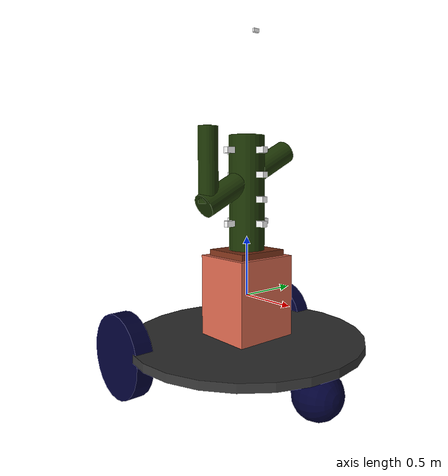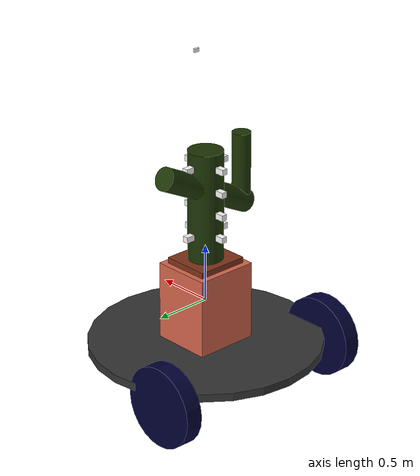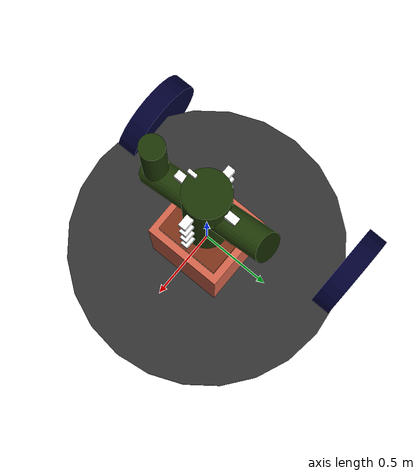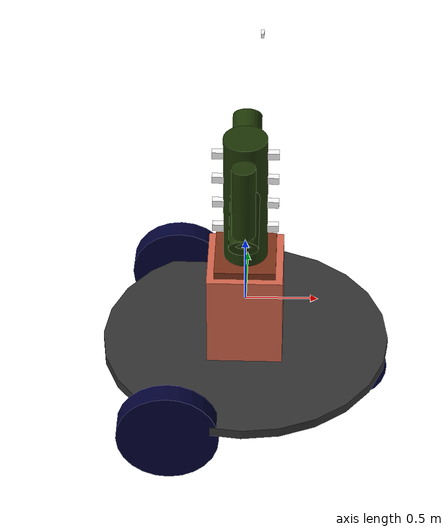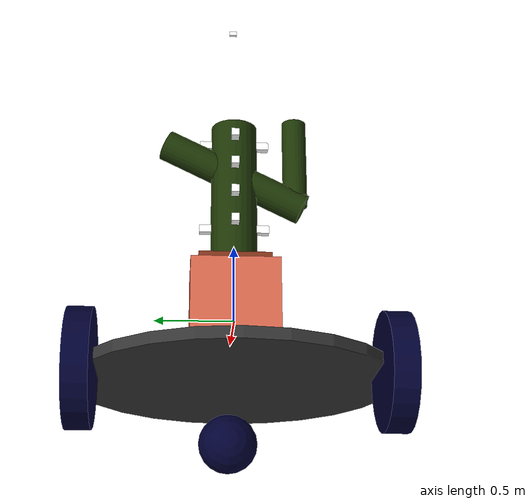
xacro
<?xml version="1.0"?>
<robot name="kak" xmlns:xacro="http://ros.org/wiki/xacro">

  <xacro:include filename="gazebo.urdf.xacro" />
  <xacro:include filename="imu.urdf.xacro" />

  <material name="Gray">
    <color rgba="0.2 0.2 0.2 1.0"/>
  </material>

  <material name="Pink">
    <color rgba="0.84 0.4 0.3 0.9"/>
  </material>

  <material name="Brown">
    <color rgba="0.5 0.2 0.1 1.0"/>
  </material>

  <material name="Green">
    <color rgba="0.112 0.21 0.021 1.0"/>
  </material>

  <material name="White">
    <color rgba="1 1 1 1.0"/>
  </material>

  <material name="Blue">
    <color rgba="0 0 0.2 1.0"/>
  </material>

   <!-- Define intertial property macros  -->
  <xacro:macro name="box_inertia" params="m w h d">
    <inertial>
      <origin xyz="0 0 0" rpy="${pi/2} 0 ${pi/2}"/>
      <mass value="${m}"/>
      <inertia ixx="${(m/12) * (h*h + d*d)}" ixy="0.0" ixz="0.0" iyy="${(m/12) * (w*w + d*d)}" iyz="0.0" izz="${(m/12) * (w*w + h*h)}"/>
    </inertial>
  </xacro:macro>

  <xacro:macro name="cylinder_inertia" params="m r h">
    <inertial>
      <origin xyz="0 0 0" rpy="${pi/2} 0 0" />
      <mass value="${m}"/>
      <inertia ixx="${(m/12) * (3*r*r + h*h)}" ixy = "0" ixz = "0" iyy="${(m/12) * (3*r*r + h*h)}" iyz = "0" izz="${(m/2) * (r*r)}"/>
    </inertial>
  </xacro:macro>

  <xacro:macro name="sphere_inertia" params="m r">
    <inertial>
      <mass value="${m}"/>
      <inertia ixx="${(2/5) * m * (r*r)}" ixy="0.0" ixz="0.0" iyy="${(2/5) * m * (r*r)}" iyz="0.0" izz="${(2/5) * m * (r*r)}"/>
    </inertial>
  </xacro:macro>

  <!--Base link-->
  <link name="base_link">
  </link>

  <!-- Robot Footprint -->
  <link name="base_footprint"/>

  <joint name="base_joint" type="fixed">
    <parent link="base_link"/>
    <child link="base_footprint"/>
    <origin xyz="0.0 0.0 -0.3" rpy="0 0 0"/>
  </joint>

   <link name="stol">
    <visual>
      <origin xyz="0 0 -0.38" rpy="0 0 0"/>
      <geometry>
	  <cylinder radius="1.0" length="0.07"/>
      </geometry>
      <material name="Gray"/>
    </visual>

    <collision>
      <geometry>
        <cylinder radius="1.0" length="0.07"/>
      </geometry>
    </collision>

    <xacro:cylinder_inertia m="0.7" r="1.0" h="0.07"/>
  </link>

  <joint name="stol_joint" type="fixed">
    <parent link="base_link"/>
    <child link="stol"/>
    <origin xyz="0.0 0.0 0.0" rpy="0 0 0"/>
  </joint>

  <!-- * * * Link Definitions * * * -->
  <link name="vaza">
    <visual>
      <geometry>
	<box size="0.52 0.56 0.685"/>
      </geometry>
      <material name="Pink"/>
    </visual>

    <collision>
      <geometry>
        <box size="0.52 0.56 0.685"/>
      </geometry>
    </collision>

    <xacro:box_inertia m="0.5" w="0.52" d="0.56" h="0.685"/>
  </link>

  <joint name="vaza_joint" type="fixed">
    <parent link="stol"/>
    <child link="vaza"/>
    <origin xyz="0 0 0" rpy="0 0 0"/>
  </joint>

  <link name="zemlya">
    <visual>
      <geometry>
	<box size="0.42 0.46 0.585"/>
      </geometry>
      <material name="Brown"/>
    </visual>

    <collision>
      <geometry>
        <box size="0.42 0.46 0.585"/>
      </geometry>
    </collision>

    <xacro:box_inertia m="0.5" w="0.42" d="0.46" h="0.585"/>
  </link>

  <joint name="zemlya_joint" type="fixed">
    <parent link="stol"/>
    <child link="zemlya"/>
    <origin xyz="0 0 0.1" rpy="0 0 0"/>
  </joint>

  <link name="kaktys">
    <visual>
      <geometry>
	<cylinder radius="0.15" length="1.7"/>
      </geometry>
      <material name="Green"/>
    </visual>

    <collision>
      <geometry>
        <cylinder radius="0.15" length="1.7"/>
      </geometry>
    </collision>

    <xacro:cylinder_inertia m="1" r="0.15" h="1.7"/>
  </link>

  <joint name="kaktys_joint" type="fixed">
    <parent link="stol"/>
    <child link="kaktys"/>
    <origin xyz="0 0 0.5" rpy="0 0 0"/>
  </joint>

  <link name="vetka_1">
    <visual>
      <geometry>
	<cylinder radius="0.1" length="1.0"/>
      </geometry>
      <material name="Green"/>
    </visual>

    <collision>
      <geometry>
        <cylinder radius="0.1" length="1.0"/>
      </geometry>
    </collision>

    <xacro:cylinder_inertia m="0.1" r="0.1" h="1.0"/>
  </link>

  <joint name="vetka_1_joint" type="fixed">
    <parent link="kaktys"/>
    <child link="vetka_1"/>
    <origin xyz="0 0 0.5" rpy="90 0 0"/>
  </joint>

  <link name="vetka_2">
    <visual>
      <geometry>
        <cylinder radius="0.08" length="0.6"/>
      </geometry>
      <material name="Green"/>
    </visual>

    <collision>
      <geometry>
        <cylinder radius="0.08" length="0.6"/>
      </geometry>
    </collision>

    <xacro:cylinder_inertia m="0.1" r="0.08" h="0.6"/>
  </link>

  <joint name="vetka_2_joint" type="fixed">
    <parent link="kaktys"/>
    <child link="vetka_2"/>
    <origin xyz="0 -0.4 0.6" rpy="0 0 0"/>
  </joint>

  <xacro:macro name = "igli" params = "prefix z_high a_long b_weight">
    <link name="igla_${prefix}">
      <visual>
        <geometry>
          <box size="${a_long} ${b_weight} 0.05"/>
	</geometry>
	<material name="White"/>
      </visual>

      <collision>
        <geometry>
          <box size="${a_long} ${b_weight} 0.05"/>
        </geometry>
      </collision>

      <xacro:box_inertia m="0.01" w="${a_long}" d="${b_weight}" h="0.05"/>
    </link>

    <joint name="igla_${prefix}_joint" type="fixed">
      <parent link="kaktys"/>
      <child link="igla_${prefix}"/>
      <origin xyz="0 0 ${z_high}" rpy="0 0 0"/>
    </joint>

  </xacro:macro>

  <xacro:igli prefix="1" z_high = "0.1225" a_long = "0.05" b_weight = "0.45" />
  <xacro:igli prefix="2" z_high = "0.1225" a_long = "0.45" b_weight = "0.05" />
  <xacro:igli prefix="3" z_high = "0.3225" a_long = "0.45" b_weight = "0.05" />
  <xacro:igli prefix="4" z_high = "0.5225" a_long = "0.45" b_weight = "0.05" />
  <xacro:igli prefix="5" z_high = "0.7225" a_long = "0.05" b_weight = "0.45" />
  <xacro:igli prefix="6" z_high = "0.7225" a_long = "0.45" b_weight = "0.05" />

    <link name="wheel_1">
      <visual>
       <origin xyz="0 0 0" rpy="1.56 0 0"/>
        <geometry>
          <cylinder radius="0.35" length="0.15"/>
	</geometry>
        <material name="Blue"/>
      </visual>

      <collision>
        <origin xyz="0 0 0" rpy="${pi/2} 0 0"/>
        <geometry>
          <cylinder radius="0.35" length="0.15"/>
        </geometry>
      </collision>

      <xacro:cylinder_inertia m="0.7" r="0.35" h="0.15"/>
    </link>

    <joint name="wheel_1_joint" type="continuous">
      <parent link="base_link"/>
      <child link="wheel_1"/>
      <origin xyz="-0.5 0.9 -0.45" rpy="0 -1.56 0"/>
      <axis xyz="0 1 0"/>
    </joint>

    <link name="wheel_2">
      <visual>
       <origin xyz="0 0 0" rpy="1.56 0 0"/>
        <geometry>
          <cylinder radius="0.35" length="0.15"/>
	</geometry>
        <material name="Blue"/>
      </visual>

      <collision>
        <origin xyz="0 0 0" rpy="${pi/2} 0 0"/>
        <geometry>
          <cylinder radius="0.35" length="0.15"/>
        </geometry>
      </collision>

      <xacro:cylinder_inertia m="0.7" r="0.35" h="0.15"/>
    </link>

    <joint name="wheel_2_joint" type="continuous">
      <parent link="base_link"/>
      <child link="wheel_2"/>
      <origin xyz="-0.5 -0.9 -0.45" rpy="0 1.56 0"/>
      <axis xyz="0 1 0"/>
    </joint>

  <link name="wheel_center">
    <visual>
      <geometry>
        <sphere radius="0.2"/>
      </geometry>
      <material name="Blue"/>
    </visual>

    <collision>
      <geometry>
        <sphere radius="0.2"/>
      </geometry>
    </collision>

    <xacro:sphere_inertia m="1.0" r="0.2"/>
  </link>

  <joint name="wheel_center_joint" type="fixed">
    <parent link="base_link"/>
    <child link="wheel_center"/>
    <origin xyz="0.8 0 -0.6" rpy="0 1.56 0"/>
    <!--axis xyz="0 1 0"/-->
  </joint>

   <gazebo reference="wheel_center">
      <mu1 value="0.001"/>
      <mu2 value="0.001"/>
  </gazebo>

</robot>

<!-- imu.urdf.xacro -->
<robot xmlns:xacro="http://www.ros.org/wiki/xacro" name="imu">

    <joint name="imu_joint" type="fixed">
        <parent link="base_link"/>
        <child link="imu_link"/>
        <origin xyz="0.11 0.0 2.17" rpy="0 0 0"/>
    </joint>

    <link name="imu_link">
        <visual>
            <origin xyz="0 0 0"/>
            <geometry>
                <box size="0.02 0.05 0.03"/>
            </geometry>
            <material name="White"/>
        </visual>
        <collision>
            <origin xyz="0 0 0"/>
            <geometry>
                <box size="0.02 0.05 0.03"/>
            </geometry>
        </collision>
        <inertial>
            <origin xyz="0 0 0" rpy="0 0 0"/>
            <mass value="0.01" />
            <inertia ixx="${(1/12) * 0.01 * (0.2*0.2+0.3*0.3)}" ixy="0.0" ixz="0.0"
                     iyy="${(1/12) * 0.01 * (0.2*0.2+0.3*0.53)}" iyz="0.0"
                     izz="${(1/12) * 0.01 * (0.2*0.2+0.3*0.3)}" />
        </inertial>
    </link>

    <gazebo reference="imu_link">
        <gravity>true</gravity>
        <sensor name='imu_sensor' type='imu'>
            <gz_frame_id>kak/imu_link</gz_frame_id>
            <always_on>1</always_on>
            <update_rate>1</update_rate>
            <visualize>1</visualize>
            <pose>0 0 0 0 0 0</pose>
        </sensor>
    </gazebo>

</robot>
